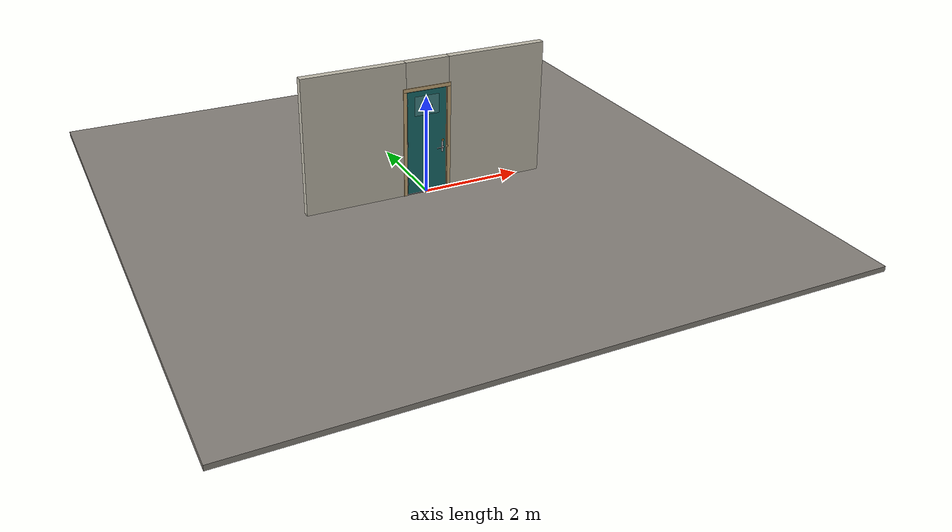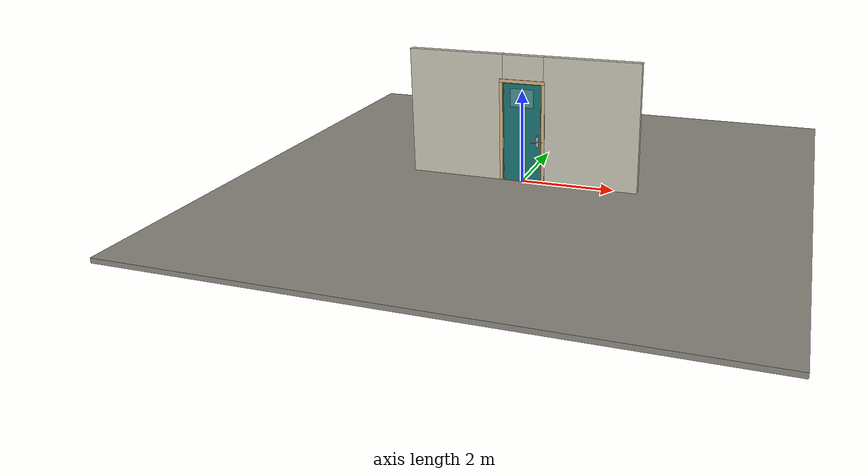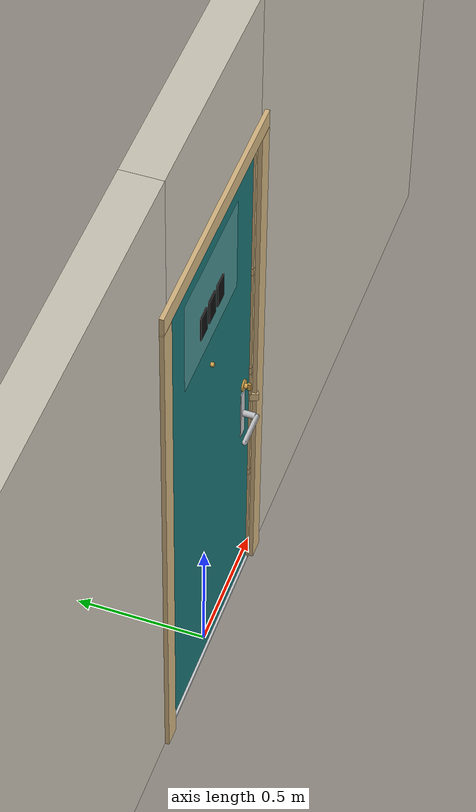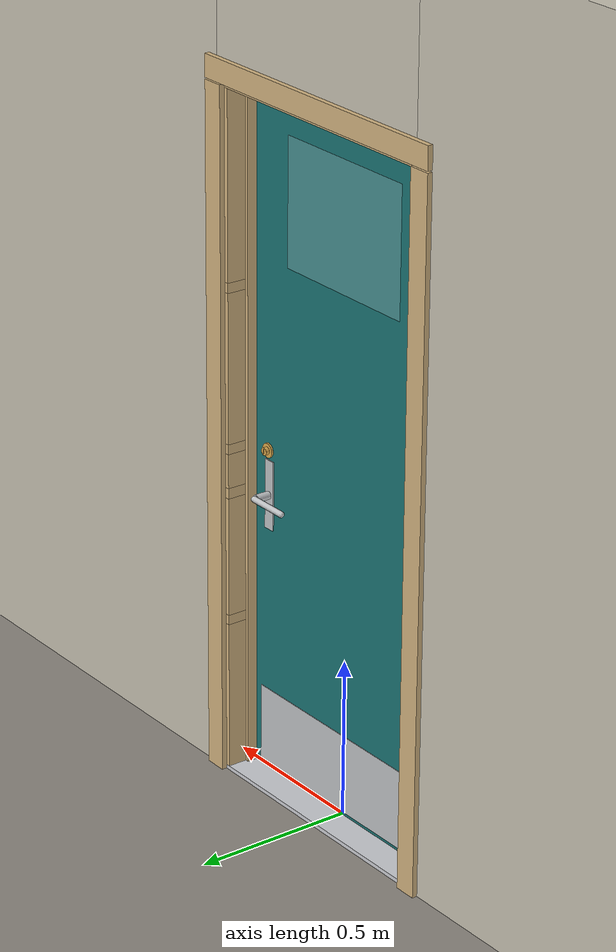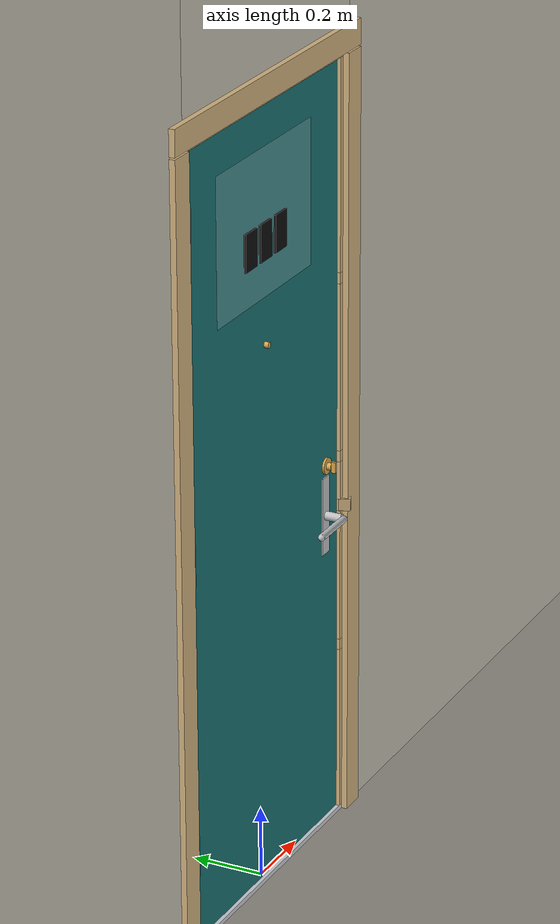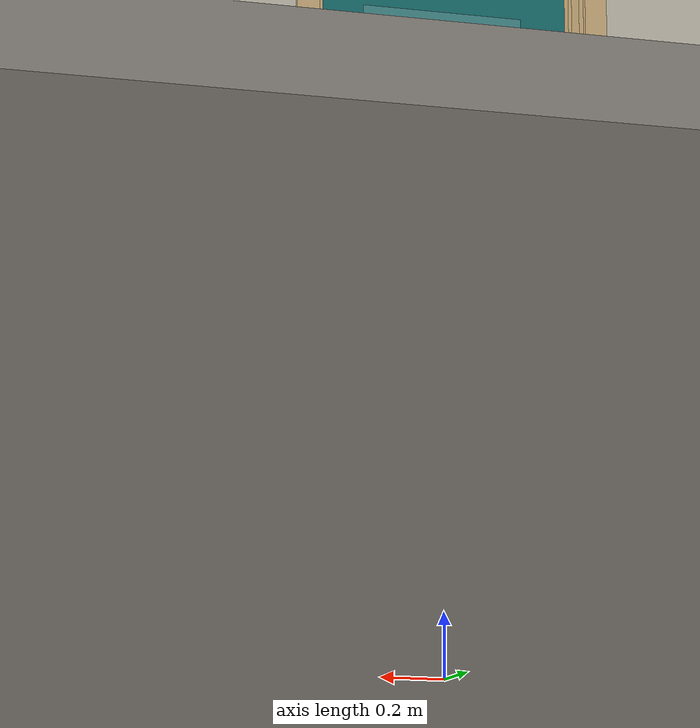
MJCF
<?xml version="1.0" ?>
<mujoco model="db0812_swing_single_full">
  <compiler angle="radian" meshdir="../../hardware" texturedir="../../textures" autolimits="true" inertiafromgeom="false"/>
  <option timestep="0.002" integrator="implicitfast" cone="elliptic" impratio="10" noslip_iterations="3">
    <flag multiccd="enable"/>
  </option>
  <size memory="16M"/>
  <default>
    <geom condim="4" solref="0.005 1" solimp="0.95 0.99 0.001"/>
    <joint solreflimit="0.005 1" solimplimit="0.95 0.99 0.001"/>
    <tendon solreflimit="0.005 1"/>
    <equality solref="0.002 1"/>
  </default>
  <visual>
    <headlight ambient="0.4 0.4 0.4" diffuse="0.7 0.7 0.7" specular="0.2 0.2 0.2"/>
    <quality shadowsize="4096"/>
    <map znear="0.01" zfar="60"/>
  </visual>
  <asset>
    <mesh name="cyl_face_e9e5036966" file="cyl_face_e9e5036966.obj"/>
    <mesh name="hinge_e22b26c0c1" file="hinge_e22b26c0c1.obj"/>
    <mesh name="hinge_jamb_e1d088f8dc" file="hinge_jamb_e1d088f8dc.obj"/>
    <mesh name="house_numbers_ad0a8e8be0" file="house_numbers_ad0a8e8be0.obj"/>
    <mesh name="lever_f913fc5b7b" file="lever_f913fc5b7b.obj"/>
    <mesh name="peephole_f829311a59" file="peephole_f829311a59.obj"/>
    <mesh name="thumbturn_eb5c9899a3" file="thumbturn_eb5c9899a3.obj"/>
    <material name="mat_floor" rgba="0.55 0.53 0.5 1" specular="0.2" shininess="0.15" reflectance="0"/>
    <material name="mat_wall" rgba="0.78 0.76 0.7 1" specular="0.2" shininess="0.1" reflectance="0"/>
    <material name="mat_leaf" rgba="0.1 0.45 0.45 1" specular="0.2" shininess="0.46" reflectance="0"/>
    <material name="mat_glass" rgba="0.85 0.92 0.95 0.25" specular="0.2" shininess="0.95" reflectance="0.1"/>
    <material name="mat_hinge" rgba="0.65 0.66 0.68 1" specular="0.74" shininess="0.5" reflectance="0.36"/>
    <material name="mat_op_stainless" rgba="0.75 0.76 0.77 1" specular="0.8" shininess="0.65" reflectance="0.4"/>
    <material name="mat_trim" rgba="0.85 0.66 0.3 1" specular="0.8" shininess="0.75" reflectance="0.4"/>
    <material name="mat_bolt" rgba="0.85 0.66 0.3 1" specular="0.8" shininess="0.75" reflectance="0.4"/>
    <material name="mat_deadbolt" rgba="0.85 0.66 0.3 1" specular="0.8" shininess="0.75" reflectance="0.4"/>
    <material name="mat_frame" rgba="0.82 0.7 0.5 1" specular="0.2" shininess="0.45" reflectance="0"/>
    <material name="mat_threshold" rgba="0.8 0.81 0.83 1" specular="0.8" shininess="0.6" reflectance="0.4"/>
    <material name="mat_kick" rgba="0.75 0.76 0.77 1" specular="0.8" shininess="0.65" reflectance="0.4"/>
    <material name="mat_peephole" rgba="0.85 0.66 0.3 1" specular="0.8" shininess="0.75" reflectance="0.4"/>
    <material name="mat_numbers" rgba="0.05 0.05 0.05 1" specular="0.38" shininess="0.3" reflectance="0.12"/>
    <texture name="skybox" type="skybox" builtin="gradient" rgb1="0.6 0.7 0.85" rgb2="0.9 0.92 0.95" width="256" height="256"/>
  </asset>
  <worldbody>
    <light name="sun" pos="1.5 -2.5 4" dir="-0.3 0.5 -0.8" directional="true" diffuse="0.8 0.8 0.8" specular="0.3 0.3 0.3" castshadow="true"/>
    <light name="fill" pos="-1.5 2.5 3" dir="0.3 -0.5 -0.7" directional="true" diffuse="0.35 0.35 0.4" castshadow="false"/>
    <camera name="robot_view" pos="0 -2.594313 1.812087" xyaxes="1 0 0 0 0.26963 0.962964" fovy="52"/>
    <camera name="far_view" pos="0 2.681312 1.812087" xyaxes="-1 0 0 0 -0.26963 0.962964" fovy="52"/>
    <camera name="iso" pos="2.004737 -2.172262 2.234138" xyaxes="0.741536 0.670913 0 -0.242917 0.268487 0.932151" fovy="46"/>
    <camera name="detail_handle" pos="0.4115 -0.877 1.194" xyaxes="0.97561 0.219512 0 -0.070934 0.315262 0.94635" fovy="38"/>
    <geom name="floor" type="box" size="6 6 0.05" pos="0 0 -0.05" material="mat_floor" group="0" contype="1" conaffinity="1" friction="0.8 0.005 0.0001" density="2400"/>
    <geom name="wall_left" type="box" size="1.03525 0.0725 1.3735" pos="-1.46475 0.0435 1.3735" material="mat_wall" group="0" contype="1" conaffinity="1" friction="0.6 0.005 0.0001" density="800"/>
    <geom name="wall_right" type="box" size="1.02025 0.0725 1.3735" pos="1.47975 0.0435 1.3735" material="mat_wall" group="0" contype="1" conaffinity="1" friction="0.6 0.005 0.0001" density="800"/>
    <geom name="wall_header" type="box" size="0.4445 0.0725 0.2755" pos="0.015 0.0435 2.4715" material="mat_wall" group="0" contype="1" conaffinity="1" friction="0.6 0.005 0.0001" density="800"/>
    <geom name="hinge_0_jamb" type="mesh" mesh="hinge_jamb_e1d088f8dc" pos="-0.4075 -0.029 0.267" material="mat_hinge" group="1" contype="0" conaffinity="0" density="7850"/>
    <geom name="hinge_1_jamb" type="mesh" mesh="hinge_jamb_e1d088f8dc" pos="-0.4075 -0.029 1.08" material="mat_hinge" group="1" contype="0" conaffinity="0" density="7850"/>
    <geom name="hinge_2_jamb" type="mesh" mesh="hinge_jamb_e1d088f8dc" pos="-0.4075 -0.029 1.963" material="mat_hinge" group="1" contype="0" conaffinity="0" density="7850"/>
    <geom name="leaf_deadbolt_strike_b" type="box" size="0.0155 0.003 0.0005" pos="0.41 0 1.0355" quat="-0.5 -0.5 0.5 0.5" material="mat_deadbolt" group="1" contype="0" conaffinity="0" density="7800"/>
    <geom name="leaf_deadbolt_strike_l" type="box" size="0.003 0.0155 0.0005" pos="0.41 0.0125 1.054" quat="-0.5 -0.5 0.5 0.5" material="mat_deadbolt" group="1" contype="0" conaffinity="0" density="7800"/>
    <geom name="leaf_deadbolt_strike_t" type="box" size="0.0155 0.003 0.0005" pos="0.41 0 1.0725" quat="-0.5 -0.5 0.5 0.5" material="mat_deadbolt" group="1" contype="0" conaffinity="0" density="7800"/>
    <geom name="leaf_deadbolt_strike_r" type="box" size="0.003 0.0155 0.0005" pos="0.41 -0.0125 1.054" quat="-0.5 -0.5 0.5 0.5" material="mat_deadbolt" group="1" contype="0" conaffinity="0" density="7800"/>
    <geom name="leaf_multipoint_upper_strike_b" type="box" size="0.0155 0.003 0.0005" pos="0.41 0 1.5355" quat="-0.5 -0.5 0.5 0.5" material="mat_deadbolt" group="1" contype="0" conaffinity="0" density="7800"/>
    <geom name="leaf_multipoint_upper_strike_l" type="box" size="0.003 0.0155 0.0005" pos="0.41 0.0125 1.554" quat="-0.5 -0.5 0.5 0.5" material="mat_deadbolt" group="1" contype="0" conaffinity="0" density="7800"/>
    <geom name="leaf_multipoint_upper_strike_t" type="box" size="0.0155 0.003 0.0005" pos="0.41 0 1.5725" quat="-0.5 -0.5 0.5 0.5" material="mat_deadbolt" group="1" contype="0" conaffinity="0" density="7800"/>
    <geom name="leaf_multipoint_upper_strike_r" type="box" size="0.003 0.0155 0.0005" pos="0.41 -0.0125 1.554" quat="-0.5 -0.5 0.5 0.5" material="mat_deadbolt" group="1" contype="0" conaffinity="0" density="7800"/>
    <geom name="leaf_multipoint_lower_strike_b" type="box" size="0.0155 0.003 0.0005" pos="0.41 0 0.4855" quat="-0.5 -0.5 0.5 0.5" material="mat_deadbolt" group="1" contype="0" conaffinity="0" density="7800"/>
    <geom name="leaf_multipoint_lower_strike_l" type="box" size="0.003 0.0155 0.0005" pos="0.41 0.0125 0.504" quat="-0.5 -0.5 0.5 0.5" material="mat_deadbolt" group="1" contype="0" conaffinity="0" density="7800"/>
    <geom name="leaf_multipoint_lower_strike_t" type="box" size="0.0155 0.003 0.0005" pos="0.41 0 0.5225" quat="-0.5 -0.5 0.5 0.5" material="mat_deadbolt" group="1" contype="0" conaffinity="0" density="7800"/>
    <geom name="leaf_multipoint_lower_strike_r" type="box" size="0.003 0.0155 0.0005" pos="0.41 -0.0125 0.504" quat="-0.5 -0.5 0.5 0.5" material="mat_deadbolt" group="1" contype="0" conaffinity="0" density="7800"/>
    <geom name="jamb_hinge" type="box" size="0.0095 0.0725 1.0735" pos="-0.42 0.0435 1.0735" material="mat_frame" group="0" contype="1" conaffinity="1" friction="0.6 0.005 0.0001" density="400"/>
    <geom name="strike_504_wall_n" type="box" size="0.0245 0.05325 0.0155" pos="0.435 0.06275 0.504" material="mat_frame" group="0" contype="1" conaffinity="1" friction="0.6 0.005 0.0001" density="400"/>
    <geom name="strike_504_wall_p" type="box" size="0.0245 0.00975 0.0155" pos="0.435 -0.01925 0.504" material="mat_frame" group="0" contype="1" conaffinity="1" friction="0.6 0.005 0.0001" density="400"/>
    <geom name="strike_504_back" type="box" size="0.0125 0.0095 0.0155" pos="0.447 0 0.504" material="mat_frame" group="0" contype="1" conaffinity="1" friction="0.6 0.005 0.0001" density="400"/>
    <geom name="strike_914_wall_n" type="box" size="0.0245 0.054075 0.0167" pos="0.435 0.061925 0.914" material="mat_frame" group="0" contype="1" conaffinity="1" friction="0.6 0.005 0.0001" density="400"/>
    <geom name="strike_914_wall_p" type="box" size="0.0245 0.008 0.0167" pos="0.435 -0.01585 0.914" material="mat_frame" group="0" contype="1" conaffinity="1" friction="0.6 0.005 0.0001" density="400"/>
    <geom name="strike_914_ramp" type="box" size="0.0245 0.01649 0.0167" pos="0.439636 -0.028673 0.914" quat="0.977148 0 0 0.212558" material="mat_frame" group="0" contype="1" conaffinity="1" friction="0.12 0.005 0.0001" density="400"/>
    <geom name="strike_914_back" type="box" size="0.01615 0.00785 0.0167" pos="0.44335 0 0.914" material="mat_frame" group="0" contype="1" conaffinity="1" friction="0.6 0.005 0.0001" density="400"/>
    <geom name="strike_1054_wall_n" type="box" size="0.0245 0.05325 0.0155" pos="0.435 0.06275 1.054" material="mat_frame" group="0" contype="1" conaffinity="1" friction="0.6 0.005 0.0001" density="400"/>
    <geom name="strike_1054_wall_p" type="box" size="0.0245 0.00975 0.0155" pos="0.435 -0.01925 1.054" material="mat_frame" group="0" contype="1" conaffinity="1" friction="0.6 0.005 0.0001" density="400"/>
    <geom name="strike_1054_back" type="box" size="0.0125 0.0095 0.0155" pos="0.447 0 1.054" material="mat_frame" group="0" contype="1" conaffinity="1" friction="0.6 0.005 0.0001" density="400"/>
    <geom name="strike_1554_wall_n" type="box" size="0.0245 0.05325 0.0155" pos="0.435 0.06275 1.554" material="mat_frame" group="0" contype="1" conaffinity="1" friction="0.6 0.005 0.0001" density="400"/>
    <geom name="strike_1554_wall_p" type="box" size="0.0245 0.00975 0.0155" pos="0.435 -0.01925 1.554" material="mat_frame" group="0" contype="1" conaffinity="1" friction="0.6 0.005 0.0001" density="400"/>
    <geom name="strike_1554_back" type="box" size="0.0125 0.0095 0.0155" pos="0.447 0 1.554" material="mat_frame" group="0" contype="1" conaffinity="1" friction="0.6 0.005 0.0001" density="400"/>
    <geom name="jamb_strike_0" type="box" size="0.0245 0.0725 0.24425" pos="0.435 0.0435 0.24425" material="mat_frame" group="0" contype="1" conaffinity="1" friction="0.6 0.005 0.0001" density="400"/>
    <geom name="jamb_strike_1" type="box" size="0.0245 0.0725 0.1889" pos="0.435 0.0435 0.7084" material="mat_frame" group="0" contype="1" conaffinity="1" friction="0.6 0.005 0.0001" density="400"/>
    <geom name="jamb_strike_2" type="box" size="0.0245 0.0725 0.0539" pos="0.435 0.0435 0.9846" material="mat_frame" group="0" contype="1" conaffinity="1" friction="0.6 0.005 0.0001" density="400"/>
    <geom name="jamb_strike_3" type="box" size="0.0245 0.0725 0.2345" pos="0.435 0.0435 1.304" material="mat_frame" group="0" contype="1" conaffinity="1" friction="0.6 0.005 0.0001" density="400"/>
    <geom name="jamb_strike_4" type="box" size="0.0245 0.0725 0.28875" pos="0.435 0.0435 1.85825" material="mat_frame" group="0" contype="1" conaffinity="1" friction="0.6 0.005 0.0001" density="400"/>
    <geom name="jamb_head" type="box" size="0.4445 0.0725 0.0095" pos="0.015 0.0435 2.1565" material="mat_frame" group="0" contype="1" conaffinity="1" friction="0.6 0.005 0.0001" density="400"/>
    <geom name="head_stud" type="box" size="0.4445 0.0725 0.015" pos="0.015 0.0435 2.181" material="mat_wall" group="0" contype="1" conaffinity="1" friction="0.6 0.005 0.0001" density="500"/>
    <geom name="stop_hinge" type="box" size="0.0055 0.016 1.0735" pos="-0.405 0.0385 1.0735" material="mat_frame" group="0" contype="1" conaffinity="1" friction="0.6 0.005 0.0001" density="400"/>
    <geom name="stop_strike" type="box" size="0.0055 0.016 1.0735" pos="0.405 0.0385 1.0735" material="mat_frame" group="0" contype="1" conaffinity="1" friction="0.6 0.005 0.0001" density="400"/>
    <geom name="stop_head" type="box" size="0.4105 0.016 0.0055" pos="0 0.0385 2.1415" material="mat_frame" group="0" contype="1" conaffinity="1" friction="0.6 0.005 0.0001" density="400"/>
    <geom name="casing_l_n" type="box" size="0.035 0.008 1.083" pos="-0.4595 -0.037 1.0735" material="mat_frame" group="2" contype="0" conaffinity="0" density="400"/>
    <geom name="casing_r_n" type="box" size="0.035 0.008 1.083" pos="0.4595 -0.037 1.0735" material="mat_frame" group="2" contype="0" conaffinity="0" density="400"/>
    <geom name="casing_h_n" type="box" size="0.4945 0.008 0.035" pos="0 -0.037 2.196" material="mat_frame" group="2" contype="0" conaffinity="0" density="400"/>
    <geom name="casing_l_p" type="box" size="0.035 0.008 1.083" pos="-0.4595 0.124 1.0735" material="mat_frame" group="2" contype="0" conaffinity="0" density="400"/>
    <geom name="casing_r_p" type="box" size="0.035 0.008 1.083" pos="0.4595 0.124 1.0735" material="mat_frame" group="2" contype="0" conaffinity="0" density="400"/>
    <geom name="casing_h_p" type="box" size="0.4945 0.008 0.035" pos="0 0.124 2.196" material="mat_frame" group="2" contype="0" conaffinity="0" density="400"/>
    <geom name="threshold" type="box" size="0.4295 0.0725 0.0065" pos="0 0.0435 0.0065" material="mat_threshold" group="0" contype="1" conaffinity="1" friction="0.5 0.005 0.0001" density="2700"/>
    <site name="approach_point" pos="0 -1.5 0" quat="1 0 0 0" size="0.05" rgba="0.2 0.9 0.2 0.5" group="4"/>
    <site name="goal_point" pos="0 1.5 0" quat="1 0 0 0" size="0.05" rgba="0.2 0.9 0.2 0.5" group="4"/>
    <site name="door_plane_center" pos="0 0 1.0735" quat="1 0 0 0" size="0.02" rgba="0.2 0.9 0.2 0.5" group="4"/>
    <body name="leaf" pos="-0.4105 0 0">
      <inertial pos="0.406842 0.001628 0.99545" mass="29.113052" quat="0.50054 0.500797 0.501559 -0.497092" diaginertia="1.733209534 12.082699309 13.804277897"/>
      <joint name="leaf_hinge" type="hinge" axis="0 0 -1" pos="0.003 -0.029 0" limited="true" range="0 1.745329" damping="2.168374" frictionloss="0.353708" stiffness="6.6" springref="-0.409091" armature="0.02"/>
      <geom name="leaf_slab" type="box" size="0.4065 0.022 1.063" pos="0.4095 0 1.08" material="mat_leaf" group="0" contype="1" conaffinity="1" friction="0.4 0.005 0.0001" density="1"/>
      <geom name="leaf_glass_0" type="box" size="0.2532 0.0228 0.196442" pos="0.4095 0 1.840258" material="mat_glass" group="1" contype="0" conaffinity="0" density="1"/>
      <geom name="hinge_0" type="mesh" mesh="hinge_e22b26c0c1" pos="0.003 -0.029 0.267" material="mat_hinge" group="1" contype="0" conaffinity="0" density="7850"/>
      <geom name="hinge_1" type="mesh" mesh="hinge_e22b26c0c1" pos="0.003 -0.029 1.08" material="mat_hinge" group="1" contype="0" conaffinity="0" density="7850"/>
      <geom name="hinge_2" type="mesh" mesh="hinge_e22b26c0c1" pos="0.003 -0.029 1.963" material="mat_hinge" group="1" contype="0" conaffinity="0" density="7850"/>
      <geom name="leaf_handle_escutcheon_n" type="box" size="0.02 0.0015 0.11" pos="0.746 -0.0235 0.914" material="mat_op_stainless" group="1" contype="0" conaffinity="0" density="3000"/>
      <geom name="leaf_handle_escutcheon_p" type="box" size="0.02 0.0015 0.11" pos="0.746 0.0235 0.914" material="mat_op_stainless" group="1" contype="0" conaffinity="0" density="3000"/>
      <geom name="leaf_latch_bolt_faceplate" type="box" size="0.0006 0.01235 0.0267" pos="0.8154 0 0.914" material="mat_bolt" group="1" contype="0" conaffinity="0" density="8500"/>
      <geom name="leaf_deadbolt_faceplate" type="box" size="0.0006 0.014 0.0245" pos="0.8154 0 1.054" material="mat_deadbolt" group="1" contype="0" conaffinity="0" density="8500"/>
      <geom name="leaf_deadbolt_cylinder_face" type="mesh" mesh="cyl_face_e9e5036966" pos="0.751 0.022 1.054" quat="-0.707107 0.707107 0 0" material="mat_deadbolt" group="1" contype="0" conaffinity="0" density="7100"/>
      <geom name="leaf_multipoint_upper_faceplate" type="box" size="0.0006 0.014 0.0245" pos="0.8154 0 1.554" material="mat_deadbolt" group="1" contype="0" conaffinity="0" density="8500"/>
      <geom name="leaf_multipoint_lower_faceplate" type="box" size="0.0006 0.014 0.0245" pos="0.8154 0 0.504" material="mat_deadbolt" group="1" contype="0" conaffinity="0" density="8500"/>
      <geom name="leaf_multipoint_strip" type="box" size="0.0004 0.01 1.043" pos="0.8156 0 1.08" material="mat_deadbolt" group="1" contype="0" conaffinity="0" density="8500"/>
      <geom name="kick_plate_p" type="box" size="0.3765 0.0008 0.125" pos="0.4095 0.0228 0.152" material="mat_kick" group="2" contype="0" conaffinity="0" density="7900"/>
      <geom name="peephole" type="mesh" mesh="peephole_f829311a59" pos="0.4095 -0.022 1.517" quat="0.707107 0.707107 0 0" material="mat_peephole" group="2" contype="0" conaffinity="0" density="8500"/>
      <geom name="house_numbers" type="mesh" mesh="house_numbers_ad0a8e8be0" pos="0.4095 -0.022 1.793" quat="0.707107 0.707107 0 0" material="mat_numbers" group="2" contype="0" conaffinity="0" density="1000"/>
      <site name="leaf_edge_mid" pos="0.816 0 1.063" quat="1 0 0 0" size="0.02" rgba="0.2 0.9 0.2 0.5" group="4"/>
      <body name="leaf_handle" pos="0.746 0 0.914">
        <inertial pos="-0.038995 0 0" mass="0.772658" quat="0.707107 0 0 -0.707107" diaginertia="0.001545312 0.003473151 0.004979007"/>
        <joint name="leaf_handle_hinge" type="hinge" axis="0 -1 0" limited="true" range="0 0.65" damping="0.225568" frictionloss="0.051863" stiffness="1" springref="-0.503022" armature="0.01"/>
        <geom name="leaf_handle_spindle" type="cylinder" size="0.006 0.034" pos="0 0 0" quat="0.707107 -0.707107 0 0" material="mat_op_stainless" group="1" contype="0" conaffinity="0" density="7850"/>
        <geom name="leaf_handle_lever_n" type="mesh" mesh="lever_f913fc5b7b" pos="0 -0.022 0" quat="0.707107 0.707107 0 0" material="mat_op_stainless" group="1" contype="0" conaffinity="0" density="3000"/>
        <geom name="leaf_handle_lever_col_n" type="capsule" size="0.0095 0.0555" pos="-0.065 -0.077 0" quat="0.707107 0 -0.707107 0" material="mat_op_stainless" group="3" contype="1" conaffinity="1" rgba="0.8 0.3 0.3 0.25" friction="0.7 0.01 0.0001" density="3000"/>
        <geom name="leaf_handle_hub_col_n" type="cylinder" size="0.012 0.022" pos="0 -0.052 0" quat="0.707107 -0.707107 0 0" material="mat_op_stainless" group="3" contype="1" conaffinity="1" rgba="0.8 0.3 0.3 0.25" friction="0.6 0.005 0.0001" density="3000"/>
        <geom name="leaf_handle_lever_p" type="mesh" mesh="lever_f913fc5b7b" pos="0 0.022 0" quat="-0.707107 0.707107 0 0" material="mat_op_stainless" group="1" contype="0" conaffinity="0" density="3000"/>
        <geom name="leaf_handle_lever_col_p" type="capsule" size="0.0095 0.0555" pos="-0.065 0.077 0" quat="0.707107 0 -0.707107 0" material="mat_op_stainless" group="3" contype="1" conaffinity="1" rgba="0.8 0.3 0.3 0.25" friction="0.7 0.01 0.0001" density="3000"/>
        <geom name="leaf_handle_hub_col_p" type="cylinder" size="0.012 0.022" pos="0 0.052 0" quat="0.707107 -0.707107 0 0" material="mat_op_stainless" group="3" contype="1" conaffinity="1" rgba="0.8 0.3 0.3 0.25" friction="0.6 0.005 0.0001" density="3000"/>
        <site name="leaf_handle_grip_n" pos="-0.104 -0.077 0" quat="1 0 0 0" size="0.012" rgba="0.2 0.9 0.2 0.5" group="4"/>
        <site name="leaf_handle_grip_p" pos="-0.104 0.077 0" quat="1 0 0 0" size="0.012" rgba="0.2 0.9 0.2 0.5" group="4"/>
      </body>
      <body name="leaf_latch_bolt" pos="0.816 0 0.914">
        <inertial pos="-0.00865 0 0" mass="0.041419" quat="0.92388 -0.382683 0 0" diaginertia="0.000000798 0.000005598 0.000005598"/>
        <joint name="leaf_latch_bolt_slide" type="slide" axis="-1 0 0" limited="true" range="0 0.0127" damping="2" frictionloss="0.3" stiffness="300" springref="-0.008333" armature="0.1"/>
        <geom name="leaf_latch_bolt_capsule" type="capsule" size="0.00635 0.015" pos="-0.00865 0 0" quat="0.707107 0 0.707107 0" material="mat_bolt" group="0" contype="1" conaffinity="1" friction="0.2 0.005 0.0001" density="8500"/>
      </body>
      <body name="leaf_deadbolt" pos="0.816 0 1.054">
        <inertial pos="-0.005 0 0" mass="0.17" quat="0 0 0.707107 0.707107" diaginertia="0.000012481 0.000039043 0.000044271"/>
        <joint name="leaf_deadbolt_slide" type="slide" axis="-1 0 0" limited="true" range="0 0.02" damping="5" frictionloss="1.5" armature="0.1"/>
        <geom name="leaf_deadbolt_box" type="box" size="0.025 0.008 0.0125" pos="-0.005 0 0" material="mat_deadbolt" group="0" contype="1" conaffinity="1" friction="0.3 0.005 0.0001" density="8500"/>
      </body>
      <body name="leaf_deadbolt_thumbturn" pos="0.751 -0.022 1.054">
        <inertial pos="0 -0.012928 0" mass="0.178946" quat="0.5 0.5 0.5 0.5" diaginertia="0.000026045 0.000026215 0.000032438"/>
        <joint name="leaf_deadbolt_thumbturn_hinge" type="hinge" axis="0 1 0" limited="true" range="0 1.5708" damping="0.05" frictionloss="0.3" armature="0.005"/>
        <geom name="leaf_deadbolt_thumbturn_mesh" type="mesh" mesh="thumbturn_eb5c9899a3" pos="0 0 0" quat="0.707107 0.707107 0 0" material="mat_deadbolt" group="0" contype="1" conaffinity="1" friction="0.6 0.005 0.0001" density="7100"/>
        <geom name="leaf_deadbolt_thumbturn_col" type="box" size="0.006 0.012 0.016" pos="0 -0.02 0" material="mat_deadbolt" group="3" contype="1" conaffinity="1" rgba="0.8 0.3 0.3 0.25" friction="0.6 0.005 0.0001" density="7100"/>
      </body>
      <body name="leaf_multipoint_upper" pos="0.816 0 1.554">
        <inertial pos="-0.005 0 0" mass="0.17" quat="0 0 0.707107 0.707107" diaginertia="0.000012481 0.000039043 0.000044271"/>
        <joint name="leaf_multipoint_upper_slide" type="slide" axis="-1 0 0" limited="true" range="0 0.02" damping="5" frictionloss="1.5" armature="0.1"/>
        <geom name="leaf_multipoint_upper_box" type="box" size="0.025 0.008 0.0125" pos="-0.005 0 0" material="mat_deadbolt" group="0" contype="1" conaffinity="1" friction="0.3 0.005 0.0001" density="8500"/>
      </body>
      <body name="leaf_multipoint_lower" pos="0.816 0 0.504">
        <inertial pos="-0.005 0 0" mass="0.17" quat="0 0 0.707107 0.707107" diaginertia="0.000012481 0.000039043 0.000044271"/>
        <joint name="leaf_multipoint_lower_slide" type="slide" axis="-1 0 0" limited="true" range="0 0.02" damping="5" frictionloss="1.5" armature="0.1"/>
        <geom name="leaf_multipoint_lower_box" type="box" size="0.025 0.008 0.0125" pos="-0.005 0 0" material="mat_deadbolt" group="0" contype="1" conaffinity="1" friction="0.3 0.005 0.0001" density="8500"/>
      </body>
    </body>
  </worldbody>
  <tendon>
    <fixed name="leaf_latch_bolt_coupling" limited="true" range="0 10">
      <joint joint="leaf_latch_bolt_slide" coef="1"/>
      <joint joint="leaf_handle_hinge" coef="-0.02082"/>
    </fixed>
  </tendon>
  <equality>
    <joint name="leaf_deadbolt_couple" joint1="leaf_deadbolt_slide" joint2="leaf_deadbolt_thumbturn_hinge" polycoef="0 0.012732 0 0 0" active="true"/>
    <joint name="leaf_multipoint_upper_couple" joint1="leaf_multipoint_upper_slide" joint2="leaf_deadbolt_slide" polycoef="0 1 0 0 0" active="true"/>
    <joint name="leaf_multipoint_lower_couple" joint1="leaf_multipoint_lower_slide" joint2="leaf_deadbolt_slide" polycoef="0 1 0 0 0" active="true"/>
  </equality>
  <contact>
    <exclude body1="leaf_deadbolt" body2="leaf_deadbolt_thumbturn"/>
  </contact>
  <sensor>
    <jointpos name="leaf_hinge_pos" joint="leaf_hinge"/>
    <jointvel name="leaf_hinge_vel" joint="leaf_hinge"/>
    <jointpos name="leaf_handle_hinge_pos" joint="leaf_handle_hinge"/>
    <jointvel name="leaf_handle_hinge_vel" joint="leaf_handle_hinge"/>
    <jointpos name="leaf_latch_bolt_slide_pos" joint="leaf_latch_bolt_slide"/>
    <jointvel name="leaf_latch_bolt_slide_vel" joint="leaf_latch_bolt_slide"/>
    <jointpos name="leaf_deadbolt_slide_pos" joint="leaf_deadbolt_slide"/>
    <jointvel name="leaf_deadbolt_slide_vel" joint="leaf_deadbolt_slide"/>
    <jointpos name="leaf_deadbolt_thumbturn_hinge_pos" joint="leaf_deadbolt_thumbturn_hinge"/>
    <jointvel name="leaf_deadbolt_thumbturn_hinge_vel" joint="leaf_deadbolt_thumbturn_hinge"/>
    <jointpos name="leaf_multipoint_upper_slide_pos" joint="leaf_multipoint_upper_slide"/>
    <jointvel name="leaf_multipoint_upper_slide_vel" joint="leaf_multipoint_upper_slide"/>
    <jointpos name="leaf_multipoint_lower_slide_pos" joint="leaf_multipoint_lower_slide"/>
    <jointvel name="leaf_multipoint_lower_slide_vel" joint="leaf_multipoint_lower_slide"/>
  </sensor>
</mujoco>
